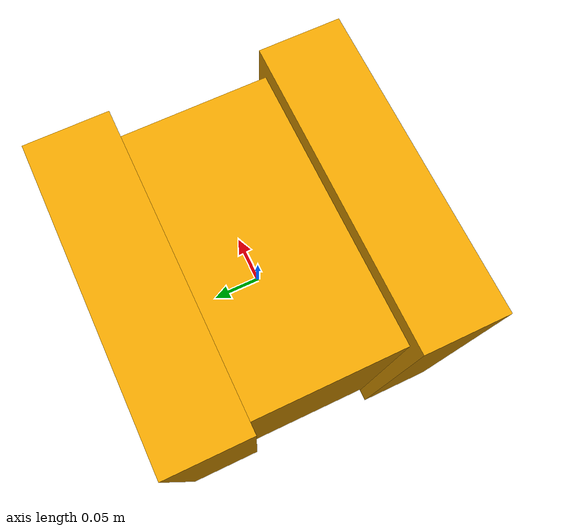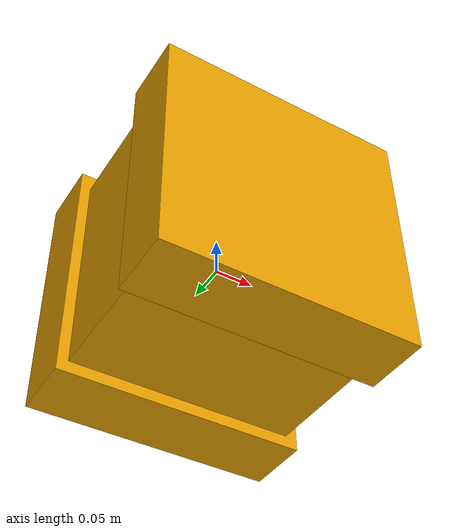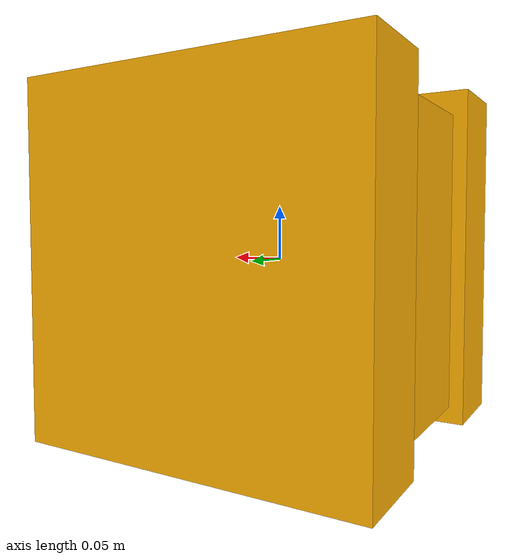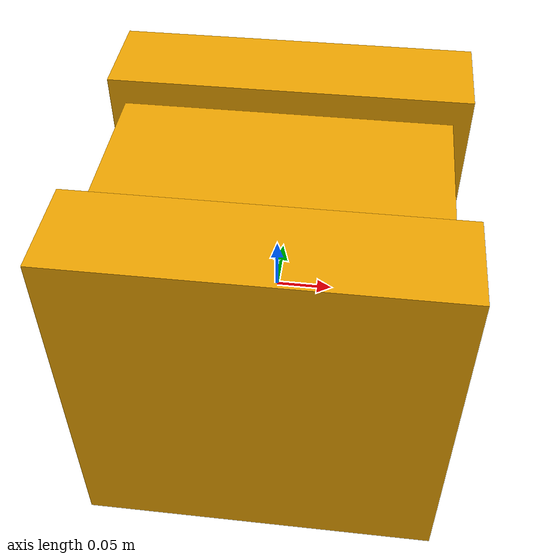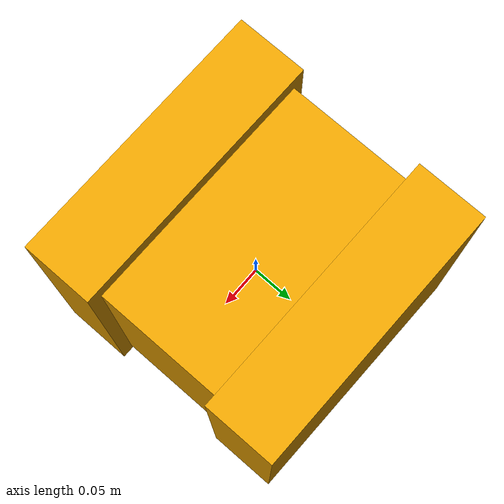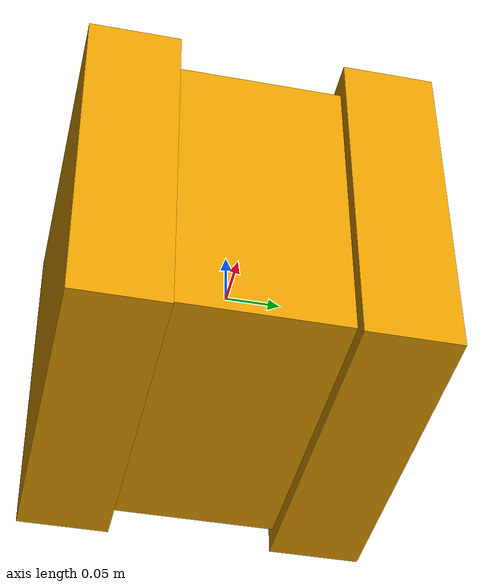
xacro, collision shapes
<?xml version="1.0"?>

<!-- Copyright (c) 2017, United States Government, as represented by the     -->
<!-- Administrator of the National Aeronautics and Space Administration.     -->
<!-- All rights reserved.                                                    -->
<!-- The Astrobee platform is licensed under the Apache License, Version 2.0 -->
<!-- (the "License"); you may not use this file except in compliance with    -->
<!-- the License. You may obtain a copy of the License at                    -->
<!--     http://www.apache.org/licenses/LICENSE-2.0                          -->
<!-- Unless required by applicable law or agreed to in writing, software     -->
<!-- distributed under the License is distributed on an "AS IS" BASIS,       -->
<!-- WITHOUT WARRANTIES OR CONDITIONS OF ANY KIND, either express or         -->
<!-- implied. See the License for the specific language governing            -->
<!-- permissions and limitations under the License.                          -->

<robot name="chaser" xmlns:xacro="http://www.ros.org/wiki/xacro">

  <!-- OPTIONS -->

  <!-- BASE GEOMETRY -->
 <link name="chaser/base_link">
    <self_collide>false</self_collide>
    <!-- body -->
    <visual name="body_visual">
      <origin xyz="0 0 0" rpy="0 0 0" />
      <geometry>
        <mesh filename="package://astrobee_description/models/astrobee_freeflyer/meshes/body.dae"/>
      </geometry>
    </visual>
    <collision name="body_collision">
      <origin xyz="-0.000794 0.000229 -0.003907" rpy="0 0 0" />
      <geometry>
        <box size="0.290513 0.151942 0.281129" />
      </geometry>
    </collision>
    <!-- port pmc -->
    <visual name="pmc_port_visual">
      <origin xyz="0 0 0" rpy="0 0 0" />
      <geometry>
        <mesh filename="package://astrobee_description/models/astrobee_freeflyer/meshes/pmc.dae"/>
      </geometry>
    </visual>
    <visual name="pmc_port_bumper_visual">
      <origin xyz="0 0 0" rpy="0 0 0" />
      <geometry>
        <mesh filename="package://astrobee_description/models/astrobee_freeflyer/meshes/pmc_bumper.dae"/>
      </geometry>
    </visual>
    <visual name="pmc_port_skin_visual">
      <origin xyz="0 0 0" rpy="0 0 0" />
      <geometry>
        <mesh filename="package://astrobee_description/models/astrobee_freeflyer/meshes/pmc_skin_.dae"/>
      </geometry>
    </visual>
    <collision name="pmc_port_collision">
      <origin xyz="0 -0.117546 0" rpy="0 0 0" />
      <geometry>
        <box size="0.319199 0.083962 0.319588" />
      </geometry>
    </collision>
    <!-- starboard pmc -->
    <visual name="pmc_stbd_visual">
      <origin xyz="0 0 0" rpy="0 3.14 3.14" />
      <geometry>
        <mesh filename="package://astrobee_description/models/astrobee_freeflyer/meshes/pmc.dae"/>
      </geometry>
    </visual>
    <visual name="pmc_stbd_bumper_visual">
      <origin xyz="0 0 0" rpy="0 3.14 3.14" />
      <geometry>
        <mesh filename="package://astrobee_description/models/astrobee_freeflyer/meshes/pmc_bumper.dae"/>
      </geometry>
    </visual>
    <visual name="pmc_stbd_skin_visual">
      <origin xyz="0 0 0" rpy="0 3.14 3.14" />
      <geometry>
        <mesh filename="package://astrobee_description/models/astrobee_freeflyer/meshes/pmc_skin_.dae"/>
      </geometry>
    </visual>
    <collision name="pmc_stbd_collision">
      <origin xyz="0 0.117546 0" rpy="0 0 0" />
      <geometry>
        <box size="0.319199 0.083962 0.319588" />
      </geometry>
    </collision>
  </link>
  <!-- This is a workaround for KDL -->
  <link name="chaser/inertial_link">
    <self_collide>false</self_collide>
    <inertial>
      <mass value="9.0877"/>
      <origin xyz="0 0 0"/>
      <inertia ixx="0.1454" ixy="0.0" ixz="0.0" iyy="0.1366" iyz="0.0" izz="0.1594"/>
    </inertial>
  </link>
  <joint name="inertial_joint" type="fixed">
    <origin xyz="0 0 0" rpy="0 0 0" />
    <parent link="chaser/base_link" />
    <child link="chaser/inertial_link" />
  </joint>

</robot>
